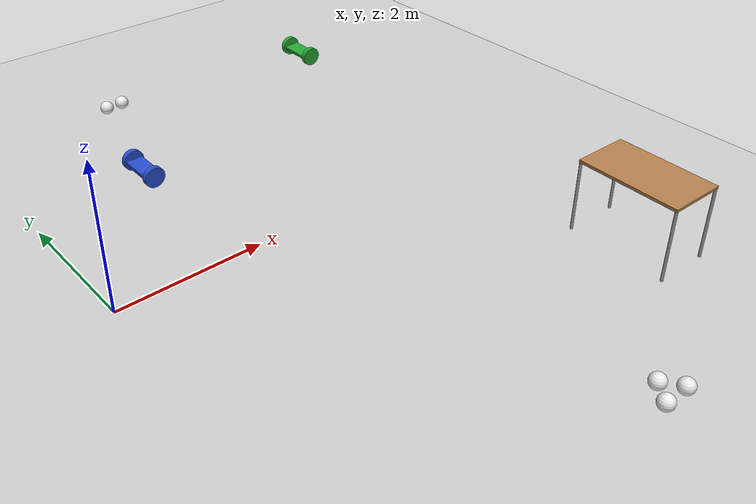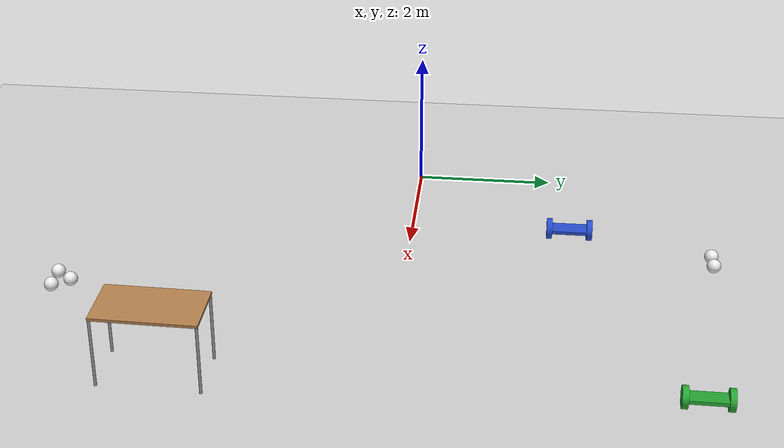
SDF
<sdf version="1.6">
 <world name="default">
  <model name="ground_plane">
   <static>1</static>
   <link name="link">
    <collision name="collision">
     <geometry><plane><normal>0 0 1</normal><size>100 100</size></plane></geometry>
     <surface><friction><ode><mu>100</mu><mu2>50</mu2></ode></friction></surface>
    </collision>
    <visual name="visual">
     <cast_shadows>0</cast_shadows>
     <geometry><plane><normal>0 0 1</normal><size>100 100</size></plane></geometry>
     <material>
      <script><uri>file://media/materials/scripts/gazebo.material</uri><name>Gazebo/Grey</name></script>
     </material>
    </visual>
   </link>
  </model>
  <model name="myrobot">
   <link name="link_2">
    <pose>0 0.290015 0 1.5707 -0 0</pose>
    <inertial>
     <mass>0.0501056</mass>
     <inertia>
      <ixx>0.00149856</ixx>
      <ixy>0</ixy>
      <ixz>0</ixz>
      <iyy>0.00149856</iyy>
      <iyz>0</iyz>
      <izz>0.00289929</izz>
     </inertia>
    </inertial>
    <visual name="visual">
     <geometry><cylinder><radius>0.15</radius><length>0.0800003</length></cylinder></geometry>
     <material>
      <lighting>1</lighting>
      <script><uri>file://media/materials/scripts/gazebo.material</uri><name>Gazebo/Green</name></script>
      <ambient>0 1 0 1</ambient>
      <diffuse>0.7 0.7 0.7 1</diffuse>
      <specular>0.01 0.01 0.01 1</specular>
      <emissive>0 0 0 1</emissive>
      <shader type="vertex"><normal_map>__default__</normal_map></shader>
     </material>
    </visual>
    <collision name="collision">
     <geometry><cylinder><radius>0.15</radius><length>0.08</length></cylinder></geometry>
     <surface>
      <friction>
       <ode><mu>1</mu><mu2>1</mu2><fdir1>0 0 0</fdir1><slip1>0</slip1><slip2>0</slip2></ode>
       <torsional>
        <coefficient>1</coefficient>
        <patch_radius>0</patch_radius>
        <surface_radius>0</surface_radius>
        <use_patch_radius>1</use_patch_radius>
        <ode><slip>0</slip></ode>
       </torsional>
      </friction>
      <bounce><restitution_coefficient>0</restitution_coefficient><threshold>1e+06</threshold></bounce>
      <contact>
       <collide_without_contact>0</collide_without_contact>
       <collide_without_contact_bitmask>1</collide_without_contact_bitmask>
       <collide_bitmask>1</collide_bitmask>
       <ode>
        <soft_cfm>0</soft_cfm>
        <soft_erp>0.2</soft_erp>
        <kp>1e+13</kp>
        <kd>1</kd>
        <max_vel>0.01</max_vel>
        <min_depth>0</min_depth>
       </ode>
       <bullet>
        <split_impulse>1</split_impulse>
        <split_impulse_penetration_threshold>-0.01</split_impulse_penetration_threshold>
        <soft_cfm>0</soft_cfm>
        <soft_erp>0.2</soft_erp>
        <kp>1e+13</kp>
        <kd>1</kd>
       </bullet>
      </contact>
     </surface>
    </collision>
   </link>
   <link name="link_2_clone">
    <pose>0 -0.290014 0 1.5707 -0 0</pose>
    <inertial>
     <mass>0.0501056</mass>
     <inertia>
      <ixx>0.00149856</ixx>
      <ixy>0</ixy>
      <ixz>0</ixz>
      <iyy>0.00149856</iyy>
      <iyz>0</iyz>
      <izz>0.00289929</izz>
     </inertia>
    </inertial>
    <visual name="visual">
     <geometry><cylinder><radius>0.15</radius><length>0.0800003</length></cylinder></geometry>
     <material>
      <lighting>1</lighting>
      <script><uri>file://media/materials/scripts/gazebo.material</uri><name>Gazebo/Green</name></script>
      <ambient>0 1 0 1</ambient>
      <diffuse>0.7 0.7 0.7 1</diffuse>
      <specular>0.01 0.01 0.01 1</specular>
      <emissive>0 0 0 1</emissive>
      <shader type="vertex"><normal_map>__default__</normal_map></shader>
     </material>
    </visual>
    <collision name="collision">
     <geometry><cylinder><radius>0.15</radius><length>0.08</length></cylinder></geometry>
     <surface>
      <friction>
       <ode><mu>1</mu><mu2>1</mu2><fdir1>0 0 0</fdir1><slip1>0</slip1><slip2>0</slip2></ode>
       <torsional>
        <coefficient>1</coefficient>
        <patch_radius>0</patch_radius>
        <surface_radius>0</surface_radius>
        <use_patch_radius>1</use_patch_radius>
        <ode><slip>0</slip></ode>
       </torsional>
      </friction>
      <bounce><restitution_coefficient>0</restitution_coefficient><threshold>1e+06</threshold></bounce>
      <contact>
       <collide_without_contact>0</collide_without_contact>
       <collide_without_contact_bitmask>1</collide_without_contact_bitmask>
       <collide_bitmask>1</collide_bitmask>
       <ode>
        <soft_cfm>0</soft_cfm>
        <soft_erp>0.2</soft_erp>
        <kp>1e+13</kp>
        <kd>1</kd>
        <max_vel>0.01</max_vel>
        <min_depth>0</min_depth>
       </ode>
       <bullet>
        <split_impulse>1</split_impulse>
        <split_impulse_penetration_threshold>-0.01</split_impulse_penetration_threshold>
        <soft_cfm>0</soft_cfm>
        <soft_erp>0.2</soft_erp>
        <kp>1e+13</kp>
        <kd>1</kd>
       </bullet>
      </contact>
     </surface>
    </collision>
   </link>
   <link name="link_3">
    <inertial>
     <mass>1</mass>
     <inertia>
      <ixx>0.166667</ixx>
      <ixy>0</ixy>
      <ixz>0</ixz>
      <iyy>0.166667</iyy>
      <iyz>0</iyz>
      <izz>0.166667</izz>
     </inertia>
    </inertial>
    <visual name="visual">
     <geometry><box><size>0.25 0.5 0.05</size></box></geometry>
     <material>
      <lighting>1</lighting>
      <script><uri>file://media/materials/scripts/gazebo.material</uri><name>Gazebo/Green</name></script>
      <ambient>0 1 0 1</ambient>
      <diffuse>0.7 0.7 0.7 1</diffuse>
      <specular>0.01 0.01 0.01 1</specular>
      <emissive>0 0 0 1</emissive>
      <shader type="vertex"><normal_map>__default__</normal_map></shader>
     </material>
    </visual>
    <collision name="collision">
     <geometry><box><size>0.25 0.5 0.05</size></box></geometry>
     <surface>
      <friction>
       <ode><mu>1</mu><mu2>1</mu2><fdir1>0 0 0</fdir1><slip1>0</slip1><slip2>0</slip2></ode>
       <torsional>
        <coefficient>1</coefficient>
        <patch_radius>0</patch_radius>
        <surface_radius>0</surface_radius>
        <use_patch_radius>1</use_patch_radius>
        <ode><slip>0</slip></ode>
       </torsional>
      </friction>
      <bounce><restitution_coefficient>0</restitution_coefficient><threshold>1e+06</threshold></bounce>
      <contact>
       <collide_without_contact>0</collide_without_contact>
       <collide_without_contact_bitmask>1</collide_without_contact_bitmask>
       <collide_bitmask>1</collide_bitmask>
       <ode>
        <soft_cfm>0</soft_cfm>
        <soft_erp>0.2</soft_erp>
        <kp>1e+13</kp>
        <kd>1</kd>
        <max_vel>0.01</max_vel>
        <min_depth>0</min_depth>
       </ode>
       <bullet>
        <split_impulse>1</split_impulse>
        <split_impulse_penetration_threshold>-0.01</split_impulse_penetration_threshold>
        <soft_cfm>0</soft_cfm>
        <soft_erp>0.2</soft_erp>
        <kp>1e+13</kp>
        <kd>1</kd>
       </bullet>
      </contact>
     </surface>
    </collision>
   </link>
   <joint name="link_2_JOINT_1" type="revolute">
    <parent>link_3</parent>
    <child>link_2_clone</child>
    <axis>
     <xyz>0 0 1</xyz>
     <use_parent_model_frame>0</use_parent_model_frame>
     <limit>
      <lower>-1.79769e+308</lower>
      <upper>1.79769e+308</upper>
      <effort>-1</effort>
      <velocity>-1</velocity>
     </limit>
     <dynamics>
      <spring_reference>0</spring_reference>
      <spring_stiffness>0</spring_stiffness>
      <damping>0</damping>
     </dynamics>
    </axis>
    <physics>
     <ode><limit><cfm>0</cfm><erp>0.2</erp></limit><suspension><cfm>0</cfm><erp>0.2</erp></suspension></ode>
    </physics>
   </joint>
   <joint name="link_3_JOINT_2" type="revolute">
    <parent>link_3</parent>
    <child>link_2</child>
    <axis>
     <xyz>0 0 1</xyz>
     <use_parent_model_frame>0</use_parent_model_frame>
     <limit>
      <lower>-1.79769e+308</lower>
      <upper>1.79769e+308</upper>
      <effort>-1</effort>
      <velocity>-1</velocity>
     </limit>
     <dynamics>
      <spring_reference>0</spring_reference>
      <spring_stiffness>0</spring_stiffness>
      <damping>0</damping>
     </dynamics>
    </axis>
    <physics>
     <ode><limit><cfm>0</cfm><erp>0.2</erp></limit><suspension><cfm>0</cfm><erp>0.2</erp></suspension></ode>
    </physics>
   </joint>
   <static>0</static>
   <pose>5.66733 4.00968 0.15 1e-05 -0.069847 -0.012097</pose>
  </model>
  <model name="myrobot_1">
   <link name="link_2">
    <pose>0 0.290015 0 1.5707 -0 0</pose>
    <inertial>
     <mass>0.0501056</mass>
     <inertia>
      <ixx>0.00149856</ixx>
      <ixy>0</ixy>
      <ixz>0</ixz>
      <iyy>0.00149856</iyy>
      <iyz>0</iyz>
      <izz>0.00289929</izz>
     </inertia>
    </inertial>
    <visual name="visual">
     <geometry><cylinder><radius>0.15</radius><length>0.0800003</length></cylinder></geometry>
     <material>
      <lighting>1</lighting>
      <script><uri>file://media/materials/scripts/gazebo.material</uri><name>Gazebo/Blue</name></script>
      <ambient>0 0 1 1</ambient>
      <diffuse>0.7 0.7 0.7 1</diffuse>
      <specular>0.01 0.01 0.01 1</specular>
      <emissive>0 0 0 1</emissive>
      <shader type="vertex"><normal_map>__default__</normal_map></shader>
     </material>
    </visual>
    <collision name="collision">
     <geometry><cylinder><radius>0.15</radius><length>0.08</length></cylinder></geometry>
     <surface>
      <friction>
       <ode><mu>1</mu><mu2>1</mu2><fdir1>0 0 0</fdir1><slip1>0</slip1><slip2>0</slip2></ode>
       <torsional>
        <coefficient>1</coefficient>
        <patch_radius>0</patch_radius>
        <surface_radius>0</surface_radius>
        <use_patch_radius>1</use_patch_radius>
        <ode><slip>0</slip></ode>
       </torsional>
      </friction>
      <bounce><restitution_coefficient>0</restitution_coefficient><threshold>1e+06</threshold></bounce>
      <contact>
       <collide_without_contact>0</collide_without_contact>
       <collide_without_contact_bitmask>1</collide_without_contact_bitmask>
       <collide_bitmask>1</collide_bitmask>
       <ode>
        <soft_cfm>0</soft_cfm>
        <soft_erp>0.2</soft_erp>
        <kp>1e+13</kp>
        <kd>1</kd>
        <max_vel>0.01</max_vel>
        <min_depth>0</min_depth>
       </ode>
       <bullet>
        <split_impulse>1</split_impulse>
        <split_impulse_penetration_threshold>-0.01</split_impulse_penetration_threshold>
        <soft_cfm>0</soft_cfm>
        <soft_erp>0.2</soft_erp>
        <kp>1e+13</kp>
        <kd>1</kd>
       </bullet>
      </contact>
     </surface>
    </collision>
   </link>
   <link name="link_2_clone">
    <pose>0 -0.290014 0 1.5707 -0 0</pose>
    <inertial>
     <mass>0.0501056</mass>
     <inertia>
      <ixx>0.00149856</ixx>
      <ixy>0</ixy>
      <ixz>0</ixz>
      <iyy>0.00149856</iyy>
      <iyz>0</iyz>
      <izz>0.00289929</izz>
     </inertia>
    </inertial>
    <visual name="visual">
     <geometry><cylinder><radius>0.15</radius><length>0.0800003</length></cylinder></geometry>
     <material>
      <lighting>1</lighting>
      <script><uri>file://media/materials/scripts/gazebo.material</uri><name>Gazebo/Blue</name></script>
      <ambient>0 0 1 1</ambient>
      <diffuse>0.7 0.7 0.7 1</diffuse>
      <specular>0.01 0.01 0.01 1</specular>
      <emissive>0 0 0 1</emissive>
      <shader type="vertex"><normal_map>__default__</normal_map></shader>
     </material>
    </visual>
    <collision name="collision">
     <geometry><cylinder><radius>0.15</radius><length>0.08</length></cylinder></geometry>
     <surface>
      <friction>
       <ode><mu>1</mu><mu2>1</mu2><fdir1>0 0 0</fdir1><slip1>0</slip1><slip2>0</slip2></ode>
       <torsional>
        <coefficient>1</coefficient>
        <patch_radius>0</patch_radius>
        <surface_radius>0</surface_radius>
        <use_patch_radius>1</use_patch_radius>
        <ode><slip>0</slip></ode>
       </torsional>
      </friction>
      <bounce><restitution_coefficient>0</restitution_coefficient><threshold>1e+06</threshold></bounce>
      <contact>
       <collide_without_contact>0</collide_without_contact>
       <collide_without_contact_bitmask>1</collide_without_contact_bitmask>
       <collide_bitmask>1</collide_bitmask>
       <ode>
        <soft_cfm>0</soft_cfm>
        <soft_erp>0.2</soft_erp>
        <kp>1e+13</kp>
        <kd>1</kd>
        <max_vel>0.01</max_vel>
        <min_depth>0</min_depth>
       </ode>
       <bullet>
        <split_impulse>1</split_impulse>
        <split_impulse_penetration_threshold>-0.01</split_impulse_penetration_threshold>
        <soft_cfm>0</soft_cfm>
        <soft_erp>0.2</soft_erp>
        <kp>1e+13</kp>
        <kd>1</kd>
       </bullet>
      </contact>
     </surface>
    </collision>
   </link>
   <link name="link_3">
    <inertial>
     <mass>1</mass>
     <inertia>
      <ixx>0.166667</ixx>
      <ixy>0</ixy>
      <ixz>0</ixz>
      <iyy>0.166667</iyy>
      <iyz>0</iyz>
      <izz>0.166667</izz>
     </inertia>
    </inertial>
    <visual name="visual">
     <geometry><box><size>0.25 0.5 0.05</size></box></geometry>
     <material>
      <lighting>1</lighting>
      <script><uri>file://media/materials/scripts/gazebo.material</uri><name>Gazebo/Blue</name></script>
      <ambient>0 0 1 1</ambient>
      <diffuse>0.7 0.7 0.7 1</diffuse>
      <specular>0.01 0.01 0.01 1</specular>
      <emissive>0 0 0 1</emissive>
      <shader type="vertex"><normal_map>__default__</normal_map></shader>
     </material>
    </visual>
    <collision name="collision">
     <geometry><box><size>0.25 0.5 0.05</size></box></geometry>
     <surface>
      <friction>
       <ode><mu>1</mu><mu2>1</mu2><fdir1>0 0 0</fdir1><slip1>0</slip1><slip2>0</slip2></ode>
       <torsional>
        <coefficient>1</coefficient>
        <patch_radius>0</patch_radius>
        <surface_radius>0</surface_radius>
        <use_patch_radius>1</use_patch_radius>
        <ode><slip>0</slip></ode>
       </torsional>
      </friction>
      <bounce><restitution_coefficient>0</restitution_coefficient><threshold>1e+06</threshold></bounce>
      <contact>
       <collide_without_contact>0</collide_without_contact>
       <collide_without_contact_bitmask>1</collide_without_contact_bitmask>
       <collide_bitmask>1</collide_bitmask>
       <ode>
        <soft_cfm>0</soft_cfm>
        <soft_erp>0.2</soft_erp>
        <kp>1e+13</kp>
        <kd>1</kd>
        <max_vel>0.01</max_vel>
        <min_depth>0</min_depth>
       </ode>
       <bullet>
        <split_impulse>1</split_impulse>
        <split_impulse_penetration_threshold>-0.01</split_impulse_penetration_threshold>
        <soft_cfm>0</soft_cfm>
        <soft_erp>0.2</soft_erp>
        <kp>1e+13</kp>
        <kd>1</kd>
       </bullet>
      </contact>
     </surface>
    </collision>
   </link>
   <joint name="link_2_JOINT_1" type="revolute">
    <parent>link_3</parent>
    <child>link_2_clone</child>
    <axis>
     <xyz>0 0 1</xyz>
     <use_parent_model_frame>0</use_parent_model_frame>
     <limit>
      <lower>-1.79769e+308</lower>
      <upper>1.79769e+308</upper>
      <effort>-1</effort>
      <velocity>-1</velocity>
     </limit>
     <dynamics>
      <spring_reference>0</spring_reference>
      <spring_stiffness>0</spring_stiffness>
      <damping>0</damping>
     </dynamics>
    </axis>
    <physics>
     <ode><limit><cfm>0</cfm><erp>0.2</erp></limit><suspension><cfm>0</cfm><erp>0.2</erp></suspension></ode>
    </physics>
   </joint>
   <joint name="link_3_JOINT_2" type="revolute">
    <parent>link_3</parent>
    <child>link_2</child>
    <axis>
     <xyz>0 0 1</xyz>
     <use_parent_model_frame>0</use_parent_model_frame>
     <limit>
      <lower>-1.79769e+308</lower>
      <upper>1.79769e+308</upper>
      <effort>-1</effort>
      <velocity>-1</velocity>
     </limit>
     <dynamics>
      <spring_reference>0</spring_reference>
      <spring_stiffness>0</spring_stiffness>
      <damping>0</damping>
     </dynamics>
    </axis>
    <physics>
     <ode><limit><cfm>0</cfm><erp>0.2</erp></limit><suspension><cfm>0</cfm><erp>0.2</erp></suspension></ode>
    </physics>
   </joint>
   <static>0</static>
   <pose>1.67738 2.31077 0.150002 6e-06 -0 0</pose>
  </model>
  <model name="table">
   <static>0</static>
   <link name="link">
    <collision name="surface">
     <pose>0 0 1 0 -0 0</pose>
     <geometry><box><size>1.5 0.8 0.03</size></box></geometry>
     <surface><friction><ode><mu>0.6</mu><mu2>0.6</mu2></ode></friction></surface>
    </collision>
    <visual name="visual1">
     <pose>0 0 1 0 -0 0</pose>
     <geometry><box><size>1.4 0.8 0.04</size></box></geometry>
     <material>
      <script><uri>file://media/materials/scripts/gazebo.material</uri><name>Gazebo/Wood</name></script>
     </material>
    </visual>
    <collision name="front_left_leg">
     <pose>0.68 0.38 0.5 0 -0 0</pose>
     <geometry><cylinder><radius>0.02</radius><length>1</length></cylinder></geometry>
    </collision>
    <visual name="front_left_leg">
     <pose>0.68 0.38 0.5 0 -0 0</pose>
     <geometry><cylinder><radius>0.02</radius><length>1</length></cylinder></geometry>
     <material>
      <script><uri>file://media/materials/scripts/gazebo.material</uri><name>Gazebo/Grey</name></script>
     </material>
    </visual>
    <collision name="front_right_leg">
     <pose>0.68 -0.38 0.5 0 -0 0</pose>
     <geometry><cylinder><radius>0.02</radius><length>1</length></cylinder></geometry>
    </collision>
    <visual name="front_right_leg">
     <pose>0.68 -0.38 0.5 0 -0 0</pose>
     <geometry><cylinder><radius>0.02</radius><length>1</length></cylinder></geometry>
     <material>
      <script><uri>file://media/materials/scripts/gazebo.material</uri><name>Gazebo/Grey</name></script>
     </material>
    </visual>
    <collision name="back_right_leg">
     <pose>-0.68 -0.38 0.5 0 -0 0</pose>
     <geometry><cylinder><radius>0.02</radius><length>1</length></cylinder></geometry>
    </collision>
    <visual name="back_right_leg">
     <pose>-0.68 -0.38 0.5 0 -0 0</pose>
     <geometry><cylinder><radius>0.02</radius><length>1</length></cylinder></geometry>
     <material>
      <script><uri>file://media/materials/scripts/gazebo.material</uri><name>Gazebo/Grey</name></script>
     </material>
    </visual>
    <collision name="back_left_leg">
     <pose>-0.68 0.38 0.5 0 -0 0</pose>
     <geometry><cylinder><radius>0.02</radius><length>1</length></cylinder></geometry>
    </collision>
    <visual name="back_left_leg">
     <pose>-0.68 0.38 0.5 0 -0 0</pose>
     <geometry><cylinder><radius>0.02</radius><length>1</length></cylinder></geometry>
     <material>
      <script><uri>file://media/materials/scripts/gazebo.material</uri><name>Gazebo/Grey</name></script>
     </material>
    </visual>
    <inertial>
     <inertia><ixx>1</ixx><ixy>0</ixy><ixz>0</ixz><iyy>1</iyy><iyz>0</iyz><izz>1</izz></inertia>
     <mass>1</mass>
    </inertial>
   </link>
   <pose>5.58853 -2.95297 -8e-06 1e-06 -0 1.54668</pose>
  </model>
  <model name="my_ball_clone_0">
   <link name="link_0">
    <inertial>
     <mass>1</mass>
     <inertia><ixx>0.1</ixx><ixy>0</ixy><ixz>0</ixz><iyy>0.1</iyy><iyz>0</iyz><izz>0.1</izz></inertia>
    </inertial>
    <visual name="visual">
     <geometry><sphere><radius>0.1</radius></sphere></geometry>
     <material>
      <lighting>1</lighting>
      <script><uri>file://media/materials/scripts/gazebo.material</uri><name>Gazebo/White</name></script>
      <ambient>1 1 1 1</ambient>
      <diffuse>1 1 1 1</diffuse>
      <specular>1 1 1 1</specular>
      <emissive>1 1 1 1</emissive>
      <shader type="vertex"><normal_map>__default__</normal_map></shader>
     </material>
    </visual>
    <collision name="collision">
     <geometry><sphere><radius>0.1</radius></sphere></geometry>
     <surface>
      <friction>
       <ode><mu>1</mu><mu2>1</mu2><fdir1>0 0 0</fdir1><slip1>0</slip1><slip2>0</slip2></ode>
       <torsional>
        <coefficient>1</coefficient>
        <patch_radius>0</patch_radius>
        <surface_radius>0</surface_radius>
        <use_patch_radius>1</use_patch_radius>
        <ode><slip>0</slip></ode>
       </torsional>
      </friction>
      <bounce><restitution_coefficient>0</restitution_coefficient><threshold>1e+06</threshold></bounce>
      <contact>
       <collide_without_contact>0</collide_without_contact>
       <collide_without_contact_bitmask>1</collide_without_contact_bitmask>
       <collide_bitmask>1</collide_bitmask>
       <ode>
        <soft_cfm>0</soft_cfm>
        <soft_erp>0.2</soft_erp>
        <kp>1e+13</kp>
        <kd>1</kd>
        <max_vel>0.01</max_vel>
        <min_depth>0</min_depth>
       </ode>
       <bullet>
        <split_impulse>1</split_impulse>
        <split_impulse_penetration_threshold>-0.01</split_impulse_penetration_threshold>
        <soft_cfm>0</soft_cfm>
        <soft_erp>0.2</soft_erp>
        <kp>1e+13</kp>
        <kd>1</kd>
       </bullet>
      </contact>
     </surface>
    </collision>
   </link>
   <static>0</static>
   <pose>2.16397 4.32994 0.1 0 -0 0</pose>
  </model>
  <model name="my_ball_clone_1">
   <link name="link_0">
    <inertial>
     <mass>1</mass>
     <inertia><ixx>0.1</ixx><ixy>0</ixy><ixz>0</ixz><iyy>0.1</iyy><iyz>0</iyz><izz>0.1</izz></inertia>
    </inertial>
    <visual name="visual">
     <geometry><sphere><radius>0.1</radius></sphere></geometry>
     <material>
      <lighting>1</lighting>
      <script><uri>file://media/materials/scripts/gazebo.material</uri><name>Gazebo/White</name></script>
      <ambient>1 1 1 1</ambient>
      <diffuse>1 1 1 1</diffuse>
      <specular>1 1 1 1</specular>
      <emissive>1 1 1 1</emissive>
      <shader type="vertex"><normal_map>__default__</normal_map></shader>
     </material>
    </visual>
    <collision name="collision">
     <geometry><sphere><radius>0.1</radius></sphere></geometry>
     <surface>
      <friction>
       <ode><mu>1</mu><mu2>1</mu2><fdir1>0 0 0</fdir1><slip1>0</slip1><slip2>0</slip2></ode>
       <torsional>
        <coefficient>1</coefficient>
        <patch_radius>0</patch_radius>
        <surface_radius>0</surface_radius>
        <use_patch_radius>1</use_patch_radius>
        <ode><slip>0</slip></ode>
       </torsional>
      </friction>
      <bounce><restitution_coefficient>0</restitution_coefficient><threshold>1e+06</threshold></bounce>
      <contact>
       <collide_without_contact>0</collide_without_contact>
       <collide_without_contact_bitmask>1</collide_without_contact_bitmask>
       <collide_bitmask>1</collide_bitmask>
       <ode>
        <soft_cfm>0</soft_cfm>
        <soft_erp>0.2</soft_erp>
        <kp>1e+13</kp>
        <kd>1</kd>
        <max_vel>0.01</max_vel>
        <min_depth>0</min_depth>
       </ode>
       <bullet>
        <split_impulse>1</split_impulse>
        <split_impulse_penetration_threshold>-0.01</split_impulse_penetration_threshold>
        <soft_cfm>0</soft_cfm>
        <soft_erp>0.2</soft_erp>
        <kp>1e+13</kp>
        <kd>1</kd>
       </bullet>
      </contact>
     </surface>
    </collision>
   </link>
   <static>0</static>
   <pose>2.42469 4.34475 0.1 0 -0 0</pose>
  </model>
  <model name="my_ball_clone_2">
   <link name="link_0">
    <inertial>
     <mass>1</mass>
     <inertia><ixx>0.1</ixx><ixy>0</ixy><ixz>0</ixz><iyy>0.1</iyy><iyz>0</iyz><izz>0.1</izz></inertia>
    </inertial>
    <visual name="visual">
     <geometry><sphere><radius>0.1</radius></sphere></geometry>
     <material>
      <lighting>1</lighting>
      <script><uri>file://media/materials/scripts/gazebo.material</uri><name>Gazebo/White</name></script>
      <ambient>1 1 1 1</ambient>
      <diffuse>1 1 1 1</diffuse>
      <specular>1 1 1 1</specular>
      <emissive>1 1 1 1</emissive>
      <shader type="vertex"><normal_map>__default__</normal_map></shader>
     </material>
    </visual>
    <collision name="collision">
     <geometry><sphere><radius>0.1</radius></sphere></geometry>
     <surface>
      <friction>
       <ode><mu>1</mu><mu2>1</mu2><fdir1>0 0 0</fdir1><slip1>0</slip1><slip2>0</slip2></ode>
       <torsional>
        <coefficient>1</coefficient>
        <patch_radius>0</patch_radius>
        <surface_radius>0</surface_radius>
        <use_patch_radius>1</use_patch_radius>
        <ode><slip>0</slip></ode>
       </torsional>
      </friction>
      <bounce><restitution_coefficient>0</restitution_coefficient><threshold>1e+06</threshold></bounce>
      <contact>
       <collide_without_contact>0</collide_without_contact>
       <collide_without_contact_bitmask>1</collide_without_contact_bitmask>
       <collide_bitmask>1</collide_bitmask>
       <ode>
        <soft_cfm>0</soft_cfm>
        <soft_erp>0.2</soft_erp>
        <kp>1e+13</kp>
        <kd>1</kd>
        <max_vel>0.01</max_vel>
        <min_depth>0</min_depth>
       </ode>
       <bullet>
        <split_impulse>1</split_impulse>
        <split_impulse_penetration_threshold>-0.01</split_impulse_penetration_threshold>
        <soft_cfm>0</soft_cfm>
        <soft_erp>0.2</soft_erp>
        <kp>1e+13</kp>
        <kd>1</kd>
       </bullet>
      </contact>
     </surface>
    </collision>
   </link>
   <static>0</static>
   <pose>3.82327 -4.83394 0.1 -0.020098 0 0</pose>
  </model>
  <model name="my_ball_clone_3">
   <link name="link_0">
    <inertial>
     <mass>1</mass>
     <inertia><ixx>0.1</ixx><ixy>0</ixy><ixz>0</ixz><iyy>0.1</iyy><iyz>0</iyz><izz>0.1</izz></inertia>
    </inertial>
    <visual name="visual">
     <geometry><sphere><radius>0.1</radius></sphere></geometry>
     <material>
      <lighting>1</lighting>
      <script><uri>file://media/materials/scripts/gazebo.material</uri><name>Gazebo/White</name></script>
      <ambient>1 1 1 1</ambient>
      <diffuse>1 1 1 1</diffuse>
      <specular>1 1 1 1</specular>
      <emissive>1 1 1 1</emissive>
      <shader type="vertex"><normal_map>__default__</normal_map></shader>
     </material>
    </visual>
    <collision name="collision">
     <geometry><sphere><radius>0.1</radius></sphere></geometry>
     <surface>
      <friction>
       <ode><mu>1</mu><mu2>1</mu2><fdir1>0 0 0</fdir1><slip1>0</slip1><slip2>0</slip2></ode>
       <torsional>
        <coefficient>1</coefficient>
        <patch_radius>0</patch_radius>
        <surface_radius>0</surface_radius>
        <use_patch_radius>1</use_patch_radius>
        <ode><slip>0</slip></ode>
       </torsional>
      </friction>
      <bounce><restitution_coefficient>0</restitution_coefficient><threshold>1e+06</threshold></bounce>
      <contact>
       <collide_without_contact>0</collide_without_contact>
       <collide_without_contact_bitmask>1</collide_without_contact_bitmask>
       <collide_bitmask>1</collide_bitmask>
       <ode>
        <soft_cfm>0</soft_cfm>
        <soft_erp>0.2</soft_erp>
        <kp>1e+13</kp>
        <kd>1</kd>
        <max_vel>0.01</max_vel>
        <min_depth>0</min_depth>
       </ode>
       <bullet>
        <split_impulse>1</split_impulse>
        <split_impulse_penetration_threshold>-0.01</split_impulse_penetration_threshold>
        <soft_cfm>0</soft_cfm>
        <soft_erp>0.2</soft_erp>
        <kp>1e+13</kp>
        <kd>1</kd>
       </bullet>
      </contact>
     </surface>
    </collision>
   </link>
   <static>0</static>
   <pose>3.47712 -4.82942 0.1 0 -0 0</pose>
  </model>
  <model name="my_ball_clone_4">
   <link name="link_0">
    <inertial>
     <mass>1</mass>
     <inertia><ixx>0.1</ixx><ixy>0</ixy><ixz>0</ixz><iyy>0.1</iyy><iyz>0</iyz><izz>0.1</izz></inertia>
    </inertial>
    <visual name="visual">
     <geometry><sphere><radius>0.1</radius></sphere></geometry>
     <material>
      <lighting>1</lighting>
      <script><uri>file://media/materials/scripts/gazebo.material</uri><name>Gazebo/White</name></script>
      <ambient>1 1 1 1</ambient>
      <diffuse>1 1 1 1</diffuse>
      <specular>1 1 1 1</specular>
      <emissive>1 1 1 1</emissive>
      <shader type="vertex"><normal_map>__default__</normal_map></shader>
     </material>
    </visual>
    <collision name="collision">
     <geometry><sphere><radius>0.1</radius></sphere></geometry>
     <surface>
      <friction>
       <ode><mu>1</mu><mu2>1</mu2><fdir1>0 0 0</fdir1><slip1>0</slip1><slip2>0</slip2></ode>
       <torsional>
        <coefficient>1</coefficient>
        <patch_radius>0</patch_radius>
        <surface_radius>0</surface_radius>
        <use_patch_radius>1</use_patch_radius>
        <ode><slip>0</slip></ode>
       </torsional>
      </friction>
      <bounce><restitution_coefficient>0</restitution_coefficient><threshold>1e+06</threshold></bounce>
      <contact>
       <collide_without_contact>0</collide_without_contact>
       <collide_without_contact_bitmask>1</collide_without_contact_bitmask>
       <collide_bitmask>1</collide_bitmask>
       <ode>
        <soft_cfm>0</soft_cfm>
        <soft_erp>0.2</soft_erp>
        <kp>1e+13</kp>
        <kd>1</kd>
        <max_vel>0.01</max_vel>
        <min_depth>0</min_depth>
       </ode>
       <bullet>
        <split_impulse>1</split_impulse>
        <split_impulse_penetration_threshold>-0.01</split_impulse_penetration_threshold>
        <soft_cfm>0</soft_cfm>
        <soft_erp>0.2</soft_erp>
        <kp>1e+13</kp>
        <kd>1</kd>
       </bullet>
      </contact>
     </surface>
    </collision>
   </link>
   <static>0</static>
   <pose>3.65944 -4.60484 0.1 0 -0 0</pose>
  </model>
 </world>
</sdf>
